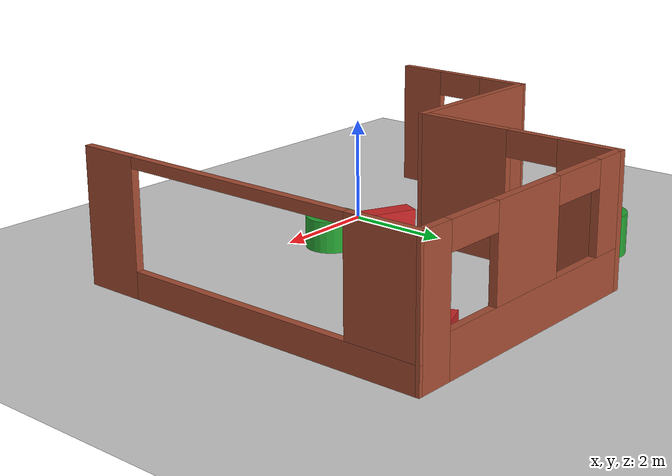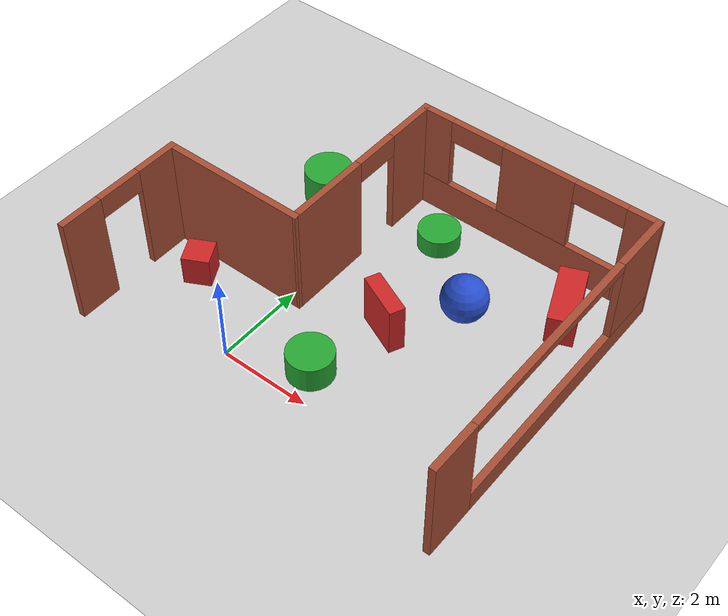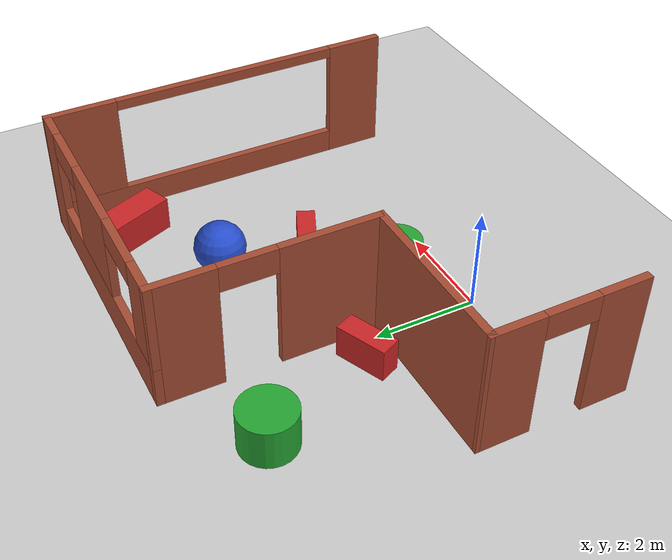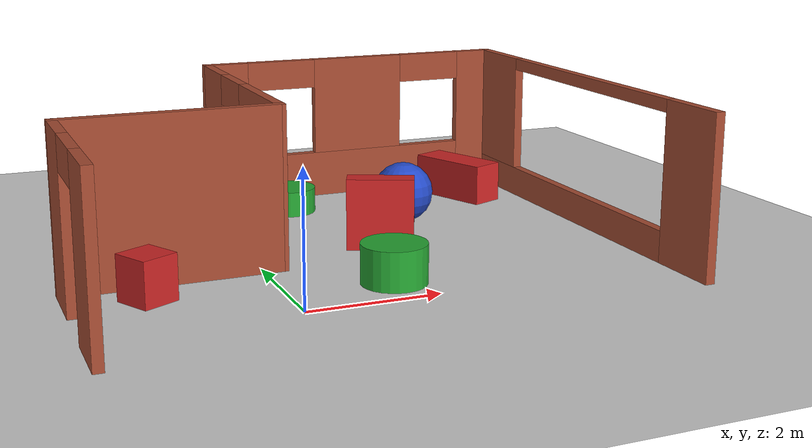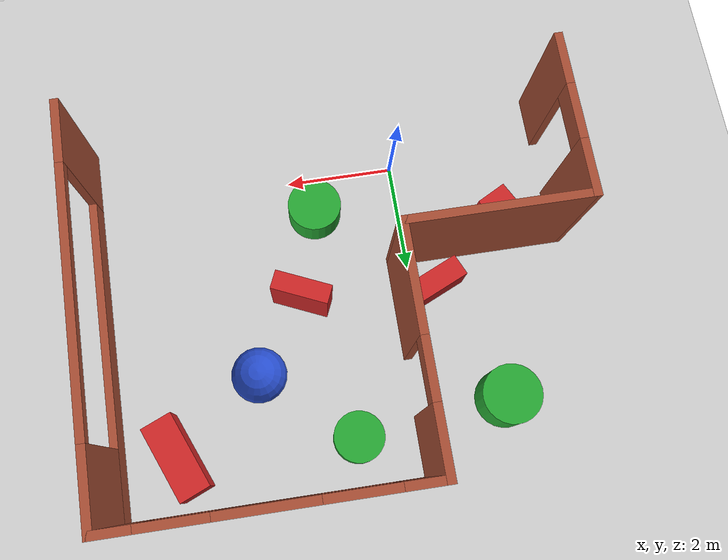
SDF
<sdf version="1.6">
 <world name="default">
  <model name="ground_plane">
   <static>1</static>
   <link name="link">
    <collision name="collision">
     <geometry><plane><normal>0 0 1</normal><size>100 100</size></plane></geometry>
     <surface>
      <contact><collide_bitmask>65535</collide_bitmask></contact>
      <friction><ode><mu>100</mu><mu2>50</mu2></ode></friction>
     </surface>
    </collision>
    <visual name="visual">
     <cast_shadows>0</cast_shadows>
     <geometry><plane><normal>0 0 1</normal><size>100 100</size></plane></geometry>
     <material>
      <script><uri>file://media/materials/scripts/gazebo.material</uri><name>Gazebo/Grey</name></script>
     </material>
    </visual>
   </link>
  </model>
  <model name="AssignmentBuilding_0">
   <link name="Wall_37">
    <pose>0.967555 4.32584 0 0 0 -1.5708</pose>
    <inertial>
     <mass>1</mass>
     <inertia><ixx>1</ixx><ixy>0</ixy><ixz>0</ixz><iyy>1</iyy><iyz>0</iyz><izz>1</izz></inertia>
    </inertial>
    <visual name="Wall_37_Visual_1">
     <pose>1.14152 0 1.25 0 -0 0</pose>
     <geometry><box><size>1.96696 0.15 2.5</size></box></geometry>
     <material>
      <script><uri>file://media/materials/scripts/gazebo.material</uri><name>Gazebo/Bricks</name></script>
      <ambient>1 1 1 1</ambient>
      <shader type="pixel"><normal_map>__default__</normal_map></shader>
      <diffuse>0.7 0.7 0.7 1</diffuse>
      <specular>0.01 0.01 0.01 1</specular>
      <emissive>0 0 0 1</emissive>
     </material>
     <meta><layer>0</layer></meta>
    </visual>
    <visual name="Wall_37_Visual_0">
     <pose>-1.50876 0 1.25 0 -0 0</pose>
     <geometry><box><size>1.23247 0.15 2.5</size></box></geometry>
     <material>
      <script><uri>file://media/materials/scripts/gazebo.material</uri><name>Gazebo/Bricks</name></script>
      <ambient>1 1 1 1</ambient>
      <shader type="pixel"><normal_map>__default__</normal_map></shader>
      <diffuse>0.7 0.7 0.7 1</diffuse>
      <specular>0.01 0.01 0.01 1</specular>
      <emissive>0 0 0 1</emissive>
     </material>
     <meta><layer>0</layer></meta>
    </visual>
    <visual name="Wall_37_Visual_2">
     <pose>-0.367245 0 2.25 0 -0 0</pose>
     <geometry><box><size>1.05057 0.15 0.5</size></box></geometry>
     <material>
      <script><uri>file://media/materials/scripts/gazebo.material</uri><name>Gazebo/Bricks</name></script>
      <ambient>1 1 1 1</ambient>
      <shader type="pixel"><normal_map>__default__</normal_map></shader>
      <diffuse>0.7 0.7 0.7 1</diffuse>
      <specular>0.01 0.01 0.01 1</specular>
      <emissive>0 0 0 1</emissive>
     </material>
     <meta><layer>0</layer></meta>
    </visual>
    <collision name="Wall_37_Collision_0">
     <pose>-1.50876 0 1.25 0 -0 0</pose>
     <geometry><box><size>1.23247 0.15 2.5</size></box></geometry>
     <surface>
      <friction>
       <ode><mu>1</mu><mu2>1</mu2><fdir1>0 0 0</fdir1><slip1>0</slip1><slip2>0</slip2></ode>
       <torsional>
        <coefficient>1</coefficient>
        <patch_radius>0</patch_radius>
        <surface_radius>0</surface_radius>
        <use_patch_radius>1</use_patch_radius>
        <ode><slip>0</slip></ode>
       </torsional>
      </friction>
      <bounce><restitution_coefficient>0</restitution_coefficient><threshold>1e+06</threshold></bounce>
      <contact>
       <collide_without_contact>0</collide_without_contact>
       <collide_without_contact_bitmask>1</collide_without_contact_bitmask>
       <collide_bitmask>1</collide_bitmask>
       <ode>
        <soft_cfm>0</soft_cfm>
        <soft_erp>0.2</soft_erp>
        <kp>1e+13</kp>
        <kd>1</kd>
        <max_vel>0.01</max_vel>
        <min_depth>0</min_depth>
       </ode>
       <bullet>
        <split_impulse>1</split_impulse>
        <split_impulse_penetration_threshold>-0.01</split_impulse_penetration_threshold>
        <soft_cfm>0</soft_cfm>
        <soft_erp>0.2</soft_erp>
        <kp>1e+13</kp>
        <kd>1</kd>
       </bullet>
      </contact>
     </surface>
    </collision>
    <collision name="Wall_37_Collision_1">
     <pose>1.14152 0 1.25 0 -0 0</pose>
     <geometry><box><size>1.96696 0.15 2.5</size></box></geometry>
     <surface>
      <friction>
       <ode><mu>1</mu><mu2>1</mu2><fdir1>0 0 0</fdir1><slip1>0</slip1><slip2>0</slip2></ode>
       <torsional>
        <coefficient>1</coefficient>
        <patch_radius>0</patch_radius>
        <surface_radius>0</surface_radius>
        <use_patch_radius>1</use_patch_radius>
        <ode><slip>0</slip></ode>
       </torsional>
      </friction>
      <bounce><restitution_coefficient>0</restitution_coefficient><threshold>1e+06</threshold></bounce>
      <contact>
       <collide_without_contact>0</collide_without_contact>
       <collide_without_contact_bitmask>1</collide_without_contact_bitmask>
       <collide_bitmask>1</collide_bitmask>
       <ode>
        <soft_cfm>0</soft_cfm>
        <soft_erp>0.2</soft_erp>
        <kp>1e+13</kp>
        <kd>1</kd>
        <max_vel>0.01</max_vel>
        <min_depth>0</min_depth>
       </ode>
       <bullet>
        <split_impulse>1</split_impulse>
        <split_impulse_penetration_threshold>-0.01</split_impulse_penetration_threshold>
        <soft_cfm>0</soft_cfm>
        <soft_erp>0.2</soft_erp>
        <kp>1e+13</kp>
        <kd>1</kd>
       </bullet>
      </contact>
     </surface>
    </collision>
    <collision name="Wall_37_Collision_2">
     <pose>-0.367245 0 2.25 0 -0 0</pose>
     <geometry><box><size>1.05057 0.15 0.5</size></box></geometry>
     <surface>
      <friction>
       <ode><mu>1</mu><mu2>1</mu2><fdir1>0 0 0</fdir1><slip1>0</slip1><slip2>0</slip2></ode>
       <torsional>
        <coefficient>1</coefficient>
        <patch_radius>0</patch_radius>
        <surface_radius>0</surface_radius>
        <use_patch_radius>1</use_patch_radius>
        <ode><slip>0</slip></ode>
       </torsional>
      </friction>
      <bounce><restitution_coefficient>0</restitution_coefficient><threshold>1e+06</threshold></bounce>
      <contact>
       <collide_without_contact>0</collide_without_contact>
       <collide_without_contact_bitmask>1</collide_without_contact_bitmask>
       <collide_bitmask>1</collide_bitmask>
       <ode>
        <soft_cfm>0</soft_cfm>
        <soft_erp>0.2</soft_erp>
        <kp>1e+13</kp>
        <kd>1</kd>
        <max_vel>0.01</max_vel>
        <min_depth>0</min_depth>
       </ode>
       <bullet>
        <split_impulse>1</split_impulse>
        <split_impulse_penetration_threshold>-0.01</split_impulse_penetration_threshold>
        <soft_cfm>0</soft_cfm>
        <soft_erp>0.2</soft_erp>
        <kp>1e+13</kp>
        <kd>1</kd>
       </bullet>
      </contact>
     </surface>
    </collision>
   </link>
   <link name="Wall_40">
    <pose>3.66768 6.37584 0 0 0 -3.14159</pose>
    <inertial>
     <mass>1</mass>
     <inertia><ixx>1</ixx><ixy>0</ixy><ixz>0</ixz><iyy>1</iyy><iyz>0</iyz><izz>1</izz></inertia>
    </inertial>
    <visual name="Wall_40_Visual_0">
     <pose>-2.41668 0 1.25 0 -0 0</pose>
     <geometry><box><size>0.71689 0.15 2.5</size></box></geometry>
     <material>
      <script><uri>file://media/materials/scripts/gazebo.material</uri><name>Gazebo/Bricks</name></script>
      <ambient>1 1 1 1</ambient>
      <shader type="pixel"><normal_map>__default__</normal_map></shader>
      <diffuse>1 1 1 1</diffuse>
      <specular>0.2 0.2 0.2 1</specular>
      <emissive>0 0 0 1</emissive>
     </material>
     <meta><layer>0</layer></meta>
    </visual>
    <visual name="Wall_40_Visual_1">
     <pose>0.358445 0 0.4 0 -0 0</pose>
     <geometry><box><size>4.83337 0.15 0.8</size></box></geometry>
     <material>
      <script><uri>file://media/materials/scripts/gazebo.material</uri><name>Gazebo/Bricks</name></script>
      <ambient>1 1 1 1</ambient>
      <shader type="pixel"><normal_map>__default__</normal_map></shader>
      <diffuse>0.7 0.7 0.7 1</diffuse>
      <specular>0.01 0.01 0.01 1</specular>
      <emissive>0 0 0 1</emissive>
     </material>
     <meta><layer>0</layer></meta>
    </visual>
    <visual name="Wall_40_Visual_2">
     <pose>-0.0658 0 1.65 0 -0 0</pose>
     <geometry><box><size>1.66352 0.15 1.7</size></box></geometry>
     <material>
      <script><uri>file://media/materials/scripts/gazebo.material</uri><name>Gazebo/Bricks</name></script>
      <ambient>1 1 1 1</ambient>
      <shader type="pixel"><normal_map>__default__</normal_map></shader>
      <diffuse>0.7 0.7 0.7 1</diffuse>
      <specular>0.01 0.01 0.01 1</specular>
      <emissive>0 0 0 1</emissive>
     </material>
     <meta><layer>0</layer></meta>
    </visual>
    <visual name="Wall_40_Visual_3">
     <pose>2.38491 0 1.65 0 -0 0</pose>
     <geometry><box><size>0.780436 0.15 1.7</size></box></geometry>
     <material>
      <script><uri>file://media/materials/scripts/gazebo.material</uri><name>Gazebo/Bricks</name></script>
      <ambient>1 1 1 1</ambient>
      <shader type="pixel"><normal_map>__default__</normal_map></shader>
      <diffuse>0.7 0.7 0.7 1</diffuse>
      <specular>0.01 0.01 0.01 1</specular>
      <emissive>0 0 0 1</emissive>
     </material>
     <meta><layer>0</layer></meta>
    </visual>
    <visual name="Wall_40_Visual_4">
     <pose>-1.4779 0 2.25 0 -0 0</pose>
     <geometry><box><size>1.16068 0.15 0.5</size></box></geometry>
     <material>
      <script><uri>file://media/materials/scripts/gazebo.material</uri><name>Gazebo/Bricks</name></script>
      <ambient>1 1 1 1</ambient>
      <shader type="pixel"><normal_map>__default__</normal_map></shader>
      <diffuse>0.7 0.7 0.7 1</diffuse>
      <specular>0.01 0.01 0.01 1</specular>
      <emissive>0 0 0 1</emissive>
     </material>
     <meta><layer>0</layer></meta>
    </visual>
    <visual name="Wall_40_Visual_5">
     <pose>1.38033 0 2.25 0 -0 0</pose>
     <geometry><box><size>1.22873 0.15 0.5</size></box></geometry>
     <material>
      <script><uri>file://media/materials/scripts/gazebo.material</uri><name>Gazebo/Bricks</name></script>
      <ambient>1 1 1 1</ambient>
      <shader type="pixel"><normal_map>__default__</normal_map></shader>
      <diffuse>0.7 0.7 0.7 1</diffuse>
      <specular>0.01 0.01 0.01 1</specular>
      <emissive>0 0 0 1</emissive>
     </material>
     <meta><layer>0</layer></meta>
    </visual>
    <collision name="Wall_40_Collision_0">
     <pose>-2.41668 0 1.25 0 -0 0</pose>
     <geometry><box><size>0.71689 0.15 2.5</size></box></geometry>
     <surface>
      <friction>
       <ode><mu>1</mu><mu2>1</mu2><fdir1>0 0 0</fdir1><slip1>0</slip1><slip2>0</slip2></ode>
       <torsional>
        <coefficient>1</coefficient>
        <patch_radius>0</patch_radius>
        <surface_radius>0</surface_radius>
        <use_patch_radius>1</use_patch_radius>
        <ode><slip>0</slip></ode>
       </torsional>
      </friction>
      <bounce><restitution_coefficient>0</restitution_coefficient><threshold>1e+06</threshold></bounce>
      <contact>
       <collide_without_contact>0</collide_without_contact>
       <collide_without_contact_bitmask>1</collide_without_contact_bitmask>
       <collide_bitmask>1</collide_bitmask>
       <ode>
        <soft_cfm>0</soft_cfm>
        <soft_erp>0.2</soft_erp>
        <kp>1e+13</kp>
        <kd>1</kd>
        <max_vel>0.01</max_vel>
        <min_depth>0</min_depth>
       </ode>
       <bullet>
        <split_impulse>1</split_impulse>
        <split_impulse_penetration_threshold>-0.01</split_impulse_penetration_threshold>
        <soft_cfm>0</soft_cfm>
        <soft_erp>0.2</soft_erp>
        <kp>1e+13</kp>
        <kd>1</kd>
       </bullet>
      </contact>
     </surface>
    </collision>
    <collision name="Wall_40_Collision_1">
     <pose>0.358445 0 0.4 0 -0 0</pose>
     <geometry><box><size>4.83337 0.15 0.8</size></box></geometry>
     <surface>
      <friction>
       <ode><mu>1</mu><mu2>1</mu2><fdir1>0 0 0</fdir1><slip1>0</slip1><slip2>0</slip2></ode>
       <torsional>
        <coefficient>1</coefficient>
        <patch_radius>0</patch_radius>
        <surface_radius>0</surface_radius>
        <use_patch_radius>1</use_patch_radius>
        <ode><slip>0</slip></ode>
       </torsional>
      </friction>
      <bounce><restitution_coefficient>0</restitution_coefficient><threshold>1e+06</threshold></bounce>
      <contact>
       <collide_without_contact>0</collide_without_contact>
       <collide_without_contact_bitmask>1</collide_without_contact_bitmask>
       <collide_bitmask>1</collide_bitmask>
       <ode>
        <soft_cfm>0</soft_cfm>
        <soft_erp>0.2</soft_erp>
        <kp>1e+13</kp>
        <kd>1</kd>
        <max_vel>0.01</max_vel>
        <min_depth>0</min_depth>
       </ode>
       <bullet>
        <split_impulse>1</split_impulse>
        <split_impulse_penetration_threshold>-0.01</split_impulse_penetration_threshold>
        <soft_cfm>0</soft_cfm>
        <soft_erp>0.2</soft_erp>
        <kp>1e+13</kp>
        <kd>1</kd>
       </bullet>
      </contact>
     </surface>
    </collision>
    <collision name="Wall_40_Collision_2">
     <pose>-0.0658 0 1.65 0 -0 0</pose>
     <geometry><box><size>1.66352 0.15 1.7</size></box></geometry>
     <surface>
      <friction>
       <ode><mu>1</mu><mu2>1</mu2><fdir1>0 0 0</fdir1><slip1>0</slip1><slip2>0</slip2></ode>
       <torsional>
        <coefficient>1</coefficient>
        <patch_radius>0</patch_radius>
        <surface_radius>0</surface_radius>
        <use_patch_radius>1</use_patch_radius>
        <ode><slip>0</slip></ode>
       </torsional>
      </friction>
      <bounce><restitution_coefficient>0</restitution_coefficient><threshold>1e+06</threshold></bounce>
      <contact>
       <collide_without_contact>0</collide_without_contact>
       <collide_without_contact_bitmask>1</collide_without_contact_bitmask>
       <collide_bitmask>1</collide_bitmask>
       <ode>
        <soft_cfm>0</soft_cfm>
        <soft_erp>0.2</soft_erp>
        <kp>1e+13</kp>
        <kd>1</kd>
        <max_vel>0.01</max_vel>
        <min_depth>0</min_depth>
       </ode>
       <bullet>
        <split_impulse>1</split_impulse>
        <split_impulse_penetration_threshold>-0.01</split_impulse_penetration_threshold>
        <soft_cfm>0</soft_cfm>
        <soft_erp>0.2</soft_erp>
        <kp>1e+13</kp>
        <kd>1</kd>
       </bullet>
      </contact>
     </surface>
    </collision>
    <collision name="Wall_40_Collision_3">
     <pose>2.38491 0 1.65 0 -0 0</pose>
     <geometry><box><size>0.780436 0.15 1.7</size></box></geometry>
     <surface>
      <friction>
       <ode><mu>1</mu><mu2>1</mu2><fdir1>0 0 0</fdir1><slip1>0</slip1><slip2>0</slip2></ode>
       <torsional>
        <coefficient>1</coefficient>
        <patch_radius>0</patch_radius>
        <surface_radius>0</surface_radius>
        <use_patch_radius>1</use_patch_radius>
        <ode><slip>0</slip></ode>
       </torsional>
      </friction>
      <bounce><restitution_coefficient>0</restitution_coefficient><threshold>1e+06</threshold></bounce>
      <contact>
       <collide_without_contact>0</collide_without_contact>
       <collide_without_contact_bitmask>1</collide_without_contact_bitmask>
       <collide_bitmask>1</collide_bitmask>
       <ode>
        <soft_cfm>0</soft_cfm>
        <soft_erp>0.2</soft_erp>
        <kp>1e+13</kp>
        <kd>1</kd>
        <max_vel>0.01</max_vel>
        <min_depth>0</min_depth>
       </ode>
       <bullet>
        <split_impulse>1</split_impulse>
        <split_impulse_penetration_threshold>-0.01</split_impulse_penetration_threshold>
        <soft_cfm>0</soft_cfm>
        <soft_erp>0.2</soft_erp>
        <kp>1e+13</kp>
        <kd>1</kd>
       </bullet>
      </contact>
     </surface>
    </collision>
    <collision name="Wall_40_Collision_4">
     <pose>-1.4779 0 2.25 0 -0 0</pose>
     <geometry><box><size>1.16068 0.15 0.5</size></box></geometry>
     <surface>
      <friction>
       <ode><mu>1</mu><mu2>1</mu2><fdir1>0 0 0</fdir1><slip1>0</slip1><slip2>0</slip2></ode>
       <torsional>
        <coefficient>1</coefficient>
        <patch_radius>0</patch_radius>
        <surface_radius>0</surface_radius>
        <use_patch_radius>1</use_patch_radius>
        <ode><slip>0</slip></ode>
       </torsional>
      </friction>
      <bounce><restitution_coefficient>0</restitution_coefficient><threshold>1e+06</threshold></bounce>
      <contact>
       <collide_without_contact>0</collide_without_contact>
       <collide_without_contact_bitmask>1</collide_without_contact_bitmask>
       <collide_bitmask>1</collide_bitmask>
       <ode>
        <soft_cfm>0</soft_cfm>
        <soft_erp>0.2</soft_erp>
        <kp>1e+13</kp>
        <kd>1</kd>
        <max_vel>0.01</max_vel>
        <min_depth>0</min_depth>
       </ode>
       <bullet>
        <split_impulse>1</split_impulse>
        <split_impulse_penetration_threshold>-0.01</split_impulse_penetration_threshold>
        <soft_cfm>0</soft_cfm>
        <soft_erp>0.2</soft_erp>
        <kp>1e+13</kp>
        <kd>1</kd>
       </bullet>
      </contact>
     </surface>
    </collision>
    <collision name="Wall_40_Collision_5">
     <pose>1.38033 0 2.25 0 -0 0</pose>
     <geometry><box><size>1.22873 0.15 0.5</size></box></geometry>
     <surface>
      <friction>
       <ode><mu>1</mu><mu2>1</mu2><fdir1>0 0 0</fdir1><slip1>0</slip1><slip2>0</slip2></ode>
       <torsional>
        <coefficient>1</coefficient>
        <patch_radius>0</patch_radius>
        <surface_radius>0</surface_radius>
        <use_patch_radius>1</use_patch_radius>
        <ode><slip>0</slip></ode>
       </torsional>
      </friction>
      <bounce><restitution_coefficient>0</restitution_coefficient><threshold>1e+06</threshold></bounce>
      <contact>
       <collide_without_contact>0</collide_without_contact>
       <collide_without_contact_bitmask>1</collide_without_contact_bitmask>
       <collide_bitmask>1</collide_bitmask>
       <ode>
        <soft_cfm>0</soft_cfm>
        <soft_erp>0.2</soft_erp>
        <kp>1e+13</kp>
        <kd>1</kd>
        <max_vel>0.01</max_vel>
        <min_depth>0</min_depth>
       </ode>
       <bullet>
        <split_impulse>1</split_impulse>
        <split_impulse_penetration_threshold>-0.01</split_impulse_penetration_threshold>
        <soft_cfm>0</soft_cfm>
        <soft_erp>0.2</soft_erp>
        <kp>1e+13</kp>
        <kd>1</kd>
       </bullet>
      </contact>
     </surface>
    </collision>
   </link>
   <link name="Wall_42">
    <pose>-0.631247 2.27475 0 0 -0 0.000678</pose>
    <inertial>
     <mass>1</mass>
     <inertia><ixx>1</ixx><ixy>0</ixy><ixz>0</ixz><iyy>1</iyy><iyz>0</iyz><izz>1</izz></inertia>
    </inertial>
    <visual name="Wall_42_Visual">
     <pose>0 0 1.25 0 -0 0</pose>
     <geometry><box><size>3.34761 0.15 2.5</size></box></geometry>
     <material>
      <script><uri>file://media/materials/scripts/gazebo.material</uri><name>Gazebo/Bricks</name></script>
      <ambient>1 1 1 1</ambient>
      <shader type="pixel"><normal_map>__default__</normal_map></shader>
      <diffuse>1 1 1 1</diffuse>
      <specular>0.2 0.2 0.2 1</specular>
      <emissive>0 0 0 1</emissive>
     </material>
     <meta><layer>0</layer></meta>
    </visual>
    <collision name="Wall_42_Collision">
     <pose>0 0 1.25 0 -0 0</pose>
     <geometry><box><size>3.34761 0.15 2.5</size></box></geometry>
     <surface>
      <friction>
       <ode><mu>1</mu><mu2>1</mu2><fdir1>0 0 0</fdir1><slip1>0</slip1><slip2>0</slip2></ode>
       <torsional>
        <coefficient>1</coefficient>
        <patch_radius>0</patch_radius>
        <surface_radius>0</surface_radius>
        <use_patch_radius>1</use_patch_radius>
        <ode><slip>0</slip></ode>
       </torsional>
      </friction>
      <bounce><restitution_coefficient>0</restitution_coefficient><threshold>1e+06</threshold></bounce>
      <contact>
       <collide_without_contact>0</collide_without_contact>
       <collide_without_contact_bitmask>1</collide_without_contact_bitmask>
       <collide_bitmask>1</collide_bitmask>
       <ode>
        <soft_cfm>0</soft_cfm>
        <soft_erp>0.2</soft_erp>
        <kp>1e+13</kp>
        <kd>1</kd>
        <max_vel>0.01</max_vel>
        <min_depth>0</min_depth>
       </ode>
       <bullet>
        <split_impulse>1</split_impulse>
        <split_impulse_penetration_threshold>-0.01</split_impulse_penetration_threshold>
        <soft_cfm>0</soft_cfm>
        <soft_erp>0.2</soft_erp>
        <kp>1e+13</kp>
        <kd>1</kd>
       </bullet>
      </contact>
     </surface>
    </collision>
   </link>
   <link name="Wall_46">
    <pose>6.37502 2.87945 0 0 -0 1.57286</pose>
    <inertial>
     <mass>1</mass>
     <inertia><ixx>1</ixx><ixy>0</ixy><ixz>0</ixz><iyy>1</iyy><iyz>0</iyz><izz>1</izz></inertia>
    </inertial>
    <visual name="Wall_46_Visual_0">
     <pose>-2.99489 0 1.25 0 -0 0</pose>
     <geometry><box><size>1.15301 0.15 2.5</size></box></geometry>
     <material>
      <script><uri>file://media/materials/scripts/gazebo.material</uri><name>Gazebo/Bricks</name></script>
      <ambient>1 1 1 1</ambient>
      <shader type="pixel"><normal_map>__default__</normal_map></shader>
      <diffuse>1 1 1 1</diffuse>
      <specular>0.2 0.2 0.2 1</specular>
      <emissive>0 0 0 1</emissive>
     </material>
     <meta><layer>0</layer></meta>
    </visual>
    <visual name="Wall_46_Visual_1">
     <pose>0.576503 0 0.2495 0 -0 0</pose>
     <geometry><box><size>5.98978 0.15 0.499</size></box></geometry>
     <material>
      <script><uri>file://media/materials/scripts/gazebo.material</uri><name>Gazebo/Bricks</name></script>
      <ambient>1 1 1 1</ambient>
      <shader type="pixel"><normal_map>__default__</normal_map></shader>
      <diffuse>0.7 0.7 0.7 1</diffuse>
      <specular>0.01 0.01 0.01 1</specular>
      <emissive>0 0 0 1</emissive>
     </material>
     <meta><layer>0</layer></meta>
    </visual>
    <visual name="Wall_46_Visual_2">
     <pose>2.865 0 1.4995 0 -0 0</pose>
     <geometry><box><size>1.41278 0.15 2.001</size></box></geometry>
     <material>
      <script><uri>file://media/materials/scripts/gazebo.material</uri><name>Gazebo/Bricks</name></script>
      <ambient>1 1 1 1</ambient>
      <shader type="pixel"><normal_map>__default__</normal_map></shader>
      <diffuse>0.7 0.7 0.7 1</diffuse>
      <specular>0.01 0.01 0.01 1</specular>
      <emissive>0 0 0 1</emissive>
     </material>
     <meta><layer>0</layer></meta>
    </visual>
    <visual name="Wall_46_Visual_3">
     <pose>-0.129889 0 2.3995 0 -0 0</pose>
     <geometry><box><size>4.577 0.15 0.201</size></box></geometry>
     <material>
      <script><uri>file://media/materials/scripts/gazebo.material</uri><name>Gazebo/Bricks</name></script>
      <ambient>1 1 1 1</ambient>
      <shader type="pixel"><normal_map>__default__</normal_map></shader>
      <diffuse>0.7 0.7 0.7 1</diffuse>
      <specular>0.01 0.01 0.01 1</specular>
      <emissive>0 0 0 1</emissive>
     </material>
     <meta><layer>0</layer></meta>
    </visual>
    <collision name="Wall_46_Collision_0">
     <pose>-2.99489 0 1.25 0 -0 0</pose>
     <geometry><box><size>1.15301 0.15 2.5</size></box></geometry>
     <surface>
      <friction>
       <ode><mu>1</mu><mu2>1</mu2><fdir1>0 0 0</fdir1><slip1>0</slip1><slip2>0</slip2></ode>
       <torsional>
        <coefficient>1</coefficient>
        <patch_radius>0</patch_radius>
        <surface_radius>0</surface_radius>
        <use_patch_radius>1</use_patch_radius>
        <ode><slip>0</slip></ode>
       </torsional>
      </friction>
      <bounce><restitution_coefficient>0</restitution_coefficient><threshold>1e+06</threshold></bounce>
      <contact>
       <collide_without_contact>0</collide_without_contact>
       <collide_without_contact_bitmask>1</collide_without_contact_bitmask>
       <collide_bitmask>1</collide_bitmask>
       <ode>
        <soft_cfm>0</soft_cfm>
        <soft_erp>0.2</soft_erp>
        <kp>1e+13</kp>
        <kd>1</kd>
        <max_vel>0.01</max_vel>
        <min_depth>0</min_depth>
       </ode>
       <bullet>
        <split_impulse>1</split_impulse>
        <split_impulse_penetration_threshold>-0.01</split_impulse_penetration_threshold>
        <soft_cfm>0</soft_cfm>
        <soft_erp>0.2</soft_erp>
        <kp>1e+13</kp>
        <kd>1</kd>
       </bullet>
      </contact>
     </surface>
    </collision>
    <collision name="Wall_46_Collision_1">
     <pose>0.576503 0 0.2495 0 -0 0</pose>
     <geometry><box><size>5.98978 0.15 0.499</size></box></geometry>
     <surface>
      <friction>
       <ode><mu>1</mu><mu2>1</mu2><fdir1>0 0 0</fdir1><slip1>0</slip1><slip2>0</slip2></ode>
       <torsional>
        <coefficient>1</coefficient>
        <patch_radius>0</patch_radius>
        <surface_radius>0</surface_radius>
        <use_patch_radius>1</use_patch_radius>
        <ode><slip>0</slip></ode>
       </torsional>
      </friction>
      <bounce><restitution_coefficient>0</restitution_coefficient><threshold>1e+06</threshold></bounce>
      <contact>
       <collide_without_contact>0</collide_without_contact>
       <collide_without_contact_bitmask>1</collide_without_contact_bitmask>
       <collide_bitmask>1</collide_bitmask>
       <ode>
        <soft_cfm>0</soft_cfm>
        <soft_erp>0.2</soft_erp>
        <kp>1e+13</kp>
        <kd>1</kd>
        <max_vel>0.01</max_vel>
        <min_depth>0</min_depth>
       </ode>
       <bullet>
        <split_impulse>1</split_impulse>
        <split_impulse_penetration_threshold>-0.01</split_impulse_penetration_threshold>
        <soft_cfm>0</soft_cfm>
        <soft_erp>0.2</soft_erp>
        <kp>1e+13</kp>
        <kd>1</kd>
       </bullet>
      </contact>
     </surface>
    </collision>
    <collision name="Wall_46_Collision_2">
     <pose>2.865 0 1.4995 0 -0 0</pose>
     <geometry><box><size>1.41278 0.15 2.001</size></box></geometry>
     <surface>
      <friction>
       <ode><mu>1</mu><mu2>1</mu2><fdir1>0 0 0</fdir1><slip1>0</slip1><slip2>0</slip2></ode>
       <torsional>
        <coefficient>1</coefficient>
        <patch_radius>0</patch_radius>
        <surface_radius>0</surface_radius>
        <use_patch_radius>1</use_patch_radius>
        <ode><slip>0</slip></ode>
       </torsional>
      </friction>
      <bounce><restitution_coefficient>0</restitution_coefficient><threshold>1e+06</threshold></bounce>
      <contact>
       <collide_without_contact>0</collide_without_contact>
       <collide_without_contact_bitmask>1</collide_without_contact_bitmask>
       <collide_bitmask>1</collide_bitmask>
       <ode>
        <soft_cfm>0</soft_cfm>
        <soft_erp>0.2</soft_erp>
        <kp>1e+13</kp>
        <kd>1</kd>
        <max_vel>0.01</max_vel>
        <min_depth>0</min_depth>
       </ode>
       <bullet>
        <split_impulse>1</split_impulse>
        <split_impulse_penetration_threshold>-0.01</split_impulse_penetration_threshold>
        <soft_cfm>0</soft_cfm>
        <soft_erp>0.2</soft_erp>
        <kp>1e+13</kp>
        <kd>1</kd>
       </bullet>
      </contact>
     </surface>
    </collision>
    <collision name="Wall_46_Collision_3">
     <pose>-0.129889 0 2.3995 0 -0 0</pose>
     <geometry><box><size>4.577 0.15 0.201</size></box></geometry>
     <surface>
      <friction>
       <ode><mu>1</mu><mu2>1</mu2><fdir1>0 0 0</fdir1><slip1>0</slip1><slip2>0</slip2></ode>
       <torsional>
        <coefficient>1</coefficient>
        <patch_radius>0</patch_radius>
        <surface_radius>0</surface_radius>
        <use_patch_radius>1</use_patch_radius>
        <ode><slip>0</slip></ode>
       </torsional>
      </friction>
      <bounce><restitution_coefficient>0</restitution_coefficient><threshold>1e+06</threshold></bounce>
      <contact>
       <collide_without_contact>0</collide_without_contact>
       <collide_without_contact_bitmask>1</collide_without_contact_bitmask>
       <collide_bitmask>1</collide_bitmask>
       <ode>
        <soft_cfm>0</soft_cfm>
        <soft_erp>0.2</soft_erp>
        <kp>1e+13</kp>
        <kd>1</kd>
        <max_vel>0.01</max_vel>
        <min_depth>0</min_depth>
       </ode>
       <bullet>
        <split_impulse>1</split_impulse>
        <split_impulse_penetration_threshold>-0.01</split_impulse_penetration_threshold>
        <soft_cfm>0</soft_cfm>
        <soft_erp>0.2</soft_erp>
        <kp>1e+13</kp>
        <kd>1</kd>
       </bullet>
      </contact>
     </surface>
    </collision>
   </link>
   <link name="Wall_60">
    <pose>-2.23005 0.848671 0 0 0 -1.5708</pose>
    <inertial>
     <mass>1</mass>
     <inertia><ixx>1</ixx><ixy>0</ixy><ixz>0</ixz><iyy>1</iyy><iyz>0</iyz><izz>1</izz></inertia>
    </inertial>
    <visual name="Wall_60_Visual_0">
     <pose>-0.983723 0 1.25 0 -0 0</pose>
     <geometry><box><size>1.03255 0.15 2.5</size></box></geometry>
     <material>
      <script><uri>file://media/materials/scripts/gazebo.material</uri><name>Gazebo/Bricks</name></script>
      <ambient>1 1 1 1</ambient>
      <shader type="pixel"><normal_map>__default__</normal_map></shader>
      <diffuse>1 1 1 1</diffuse>
      <specular>0.2 0.2 0.2 1</specular>
      <emissive>0 0 0 1</emissive>
     </material>
     <meta><layer>0</layer></meta>
    </visual>
    <visual name="Wall_60_Visual_1">
     <pose>1.02103 0 1.25 0 -0 0</pose>
     <geometry><box><size>0.957943 0.15 2.5</size></box></geometry>
     <material>
      <script><uri>file://media/materials/scripts/gazebo.material</uri><name>Gazebo/Bricks</name></script>
      <ambient>1 1 1 1</ambient>
      <shader type="pixel"><normal_map>__default__</normal_map></shader>
      <diffuse>0.7 0.7 0.7 1</diffuse>
      <specular>0.01 0.01 0.01 1</specular>
      <emissive>0 0 0 1</emissive>
     </material>
     <meta><layer>0</layer></meta>
    </visual>
    <visual name="Wall_60_Visual_2">
     <pose>0.037305 0 2.25 0 -0 0</pose>
     <geometry><box><size>1.0095 0.15 0.5</size></box></geometry>
     <material>
      <script><uri>file://media/materials/scripts/gazebo.material</uri><name>Gazebo/Bricks</name></script>
      <ambient>1 1 1 1</ambient>
      <shader type="pixel"><normal_map>__default__</normal_map></shader>
      <diffuse>0.7 0.7 0.7 1</diffuse>
      <specular>0.01 0.01 0.01 1</specular>
      <emissive>0 0 0 1</emissive>
     </material>
     <meta><layer>0</layer></meta>
    </visual>
    <collision name="Wall_60_Collision_0">
     <pose>-0.983723 0 1.25 0 -0 0</pose>
     <geometry><box><size>1.03255 0.15 2.5</size></box></geometry>
     <surface>
      <friction>
       <ode><mu>1</mu><mu2>1</mu2><fdir1>0 0 0</fdir1><slip1>0</slip1><slip2>0</slip2></ode>
       <torsional>
        <coefficient>1</coefficient>
        <patch_radius>0</patch_radius>
        <surface_radius>0</surface_radius>
        <use_patch_radius>1</use_patch_radius>
        <ode><slip>0</slip></ode>
       </torsional>
      </friction>
      <bounce><restitution_coefficient>0</restitution_coefficient><threshold>1e+06</threshold></bounce>
      <contact>
       <collide_without_contact>0</collide_without_contact>
       <collide_without_contact_bitmask>1</collide_without_contact_bitmask>
       <collide_bitmask>1</collide_bitmask>
       <ode>
        <soft_cfm>0</soft_cfm>
        <soft_erp>0.2</soft_erp>
        <kp>1e+13</kp>
        <kd>1</kd>
        <max_vel>0.01</max_vel>
        <min_depth>0</min_depth>
       </ode>
       <bullet>
        <split_impulse>1</split_impulse>
        <split_impulse_penetration_threshold>-0.01</split_impulse_penetration_threshold>
        <soft_cfm>0</soft_cfm>
        <soft_erp>0.2</soft_erp>
        <kp>1e+13</kp>
        <kd>1</kd>
       </bullet>
      </contact>
     </surface>
    </collision>
    <collision name="Wall_60_Collision_1">
     <pose>1.02103 0 1.25 0 -0 0</pose>
     <geometry><box><size>0.957943 0.15 2.5</size></box></geometry>
     <surface>
      <friction>
       <ode><mu>1</mu><mu2>1</mu2><fdir1>0 0 0</fdir1><slip1>0</slip1><slip2>0</slip2></ode>
       <torsional>
        <coefficient>1</coefficient>
        <patch_radius>0</patch_radius>
        <surface_radius>0</surface_radius>
        <use_patch_radius>1</use_patch_radius>
        <ode><slip>0</slip></ode>
       </torsional>
      </friction>
      <bounce><restitution_coefficient>0</restitution_coefficient><threshold>1e+06</threshold></bounce>
      <contact>
       <collide_without_contact>0</collide_without_contact>
       <collide_without_contact_bitmask>1</collide_without_contact_bitmask>
       <collide_bitmask>1</collide_bitmask>
       <ode>
        <soft_cfm>0</soft_cfm>
        <soft_erp>0.2</soft_erp>
        <kp>1e+13</kp>
        <kd>1</kd>
        <max_vel>0.01</max_vel>
        <min_depth>0</min_depth>
       </ode>
       <bullet>
        <split_impulse>1</split_impulse>
        <split_impulse_penetration_threshold>-0.01</split_impulse_penetration_threshold>
        <soft_cfm>0</soft_cfm>
        <soft_erp>0.2</soft_erp>
        <kp>1e+13</kp>
        <kd>1</kd>
       </bullet>
      </contact>
     </surface>
    </collision>
    <collision name="Wall_60_Collision_2">
     <pose>0.037305 0 2.25 0 -0 0</pose>
     <geometry><box><size>1.0095 0.15 0.5</size></box></geometry>
     <surface>
      <friction>
       <ode><mu>1</mu><mu2>1</mu2><fdir1>0 0 0</fdir1><slip1>0</slip1><slip2>0</slip2></ode>
       <torsional>
        <coefficient>1</coefficient>
        <patch_radius>0</patch_radius>
        <surface_radius>0</surface_radius>
        <use_patch_radius>1</use_patch_radius>
        <ode><slip>0</slip></ode>
       </torsional>
      </friction>
      <bounce><restitution_coefficient>0</restitution_coefficient><threshold>1e+06</threshold></bounce>
      <contact>
       <collide_without_contact>0</collide_without_contact>
       <collide_without_contact_bitmask>1</collide_without_contact_bitmask>
       <collide_bitmask>1</collide_bitmask>
       <ode>
        <soft_cfm>0</soft_cfm>
        <soft_erp>0.2</soft_erp>
        <kp>1e+13</kp>
        <kd>1</kd>
        <max_vel>0.01</max_vel>
        <min_depth>0</min_depth>
       </ode>
       <bullet>
        <split_impulse>1</split_impulse>
        <split_impulse_penetration_threshold>-0.01</split_impulse_penetration_threshold>
        <soft_cfm>0</soft_cfm>
        <soft_erp>0.2</soft_erp>
        <kp>1e+13</kp>
        <kd>1</kd>
       </bullet>
      </contact>
     </surface>
    </collision>
   </link>
   <static>1</static>
   <pose>-0.68157 -0.42903 0 0 -0 0</pose>
  </model>
  <model name="unit_box_3_clone">
   <link name="link">
    <inertial>
     <mass>1</mass>
     <inertia>
      <ixx>0.166667</ixx>
      <ixy>0</ixy>
      <ixz>0</ixz>
      <iyy>0.166667</iyy>
      <iyz>0</iyz>
      <izz>0.166667</izz>
     </inertia>
    </inertial>
    <visual name="visual">
     <geometry><box><size>1.44683 0.587718 0.68729</size></box></geometry>
     <material>
      <script><name>Gazebo/Red</name><uri>file://media/materials/scripts/gazebo.material</uri></script>
      <shader type="pixel"><normal_map>__default__</normal_map></shader>
      <ambient>1 0 0 1</ambient>
      <diffuse>1 0 0 1</diffuse>
      <specular>0.1 0.1 0.1 1</specular>
      <emissive>0 0 0 1</emissive>
     </material>
    </visual>
    <collision name="collision">
     <geometry><box><size>1.44683 0.587718 0.68729</size></box></geometry>
     <surface>
      <friction>
       <ode><mu>1</mu><mu2>1</mu2><fdir1>0 0 0</fdir1><slip1>0</slip1><slip2>0</slip2></ode>
       <torsional>
        <coefficient>1</coefficient>
        <patch_radius>0</patch_radius>
        <surface_radius>0</surface_radius>
        <use_patch_radius>1</use_patch_radius>
        <ode><slip>0</slip></ode>
       </torsional>
      </friction>
      <bounce><restitution_coefficient>0</restitution_coefficient><threshold>1e+06</threshold></bounce>
      <contact>
       <collide_without_contact>0</collide_without_contact>
       <collide_without_contact_bitmask>1</collide_without_contact_bitmask>
       <collide_bitmask>1</collide_bitmask>
       <ode>
        <soft_cfm>0</soft_cfm>
        <soft_erp>0.2</soft_erp>
        <kp>1e+13</kp>
        <kd>1</kd>
        <max_vel>0.01</max_vel>
        <min_depth>0</min_depth>
       </ode>
       <bullet>
        <split_impulse>1</split_impulse>
        <split_impulse_penetration_threshold>-0.01</split_impulse_penetration_threshold>
        <soft_cfm>0</soft_cfm>
        <soft_erp>0.2</soft_erp>
        <kp>1e+13</kp>
        <kd>1</kd>
       </bullet>
      </contact>
     </surface>
    </collision>
   </link>
   <static>0</static>
   <pose>4.62197 4.90578 0.343645 0 0 -1.1788</pose>
  </model>
  <model name="unit_box_3_clone_1">
   <link name="link">
    <inertial>
     <mass>1</mass>
     <inertia>
      <ixx>0.166667</ixx>
      <ixy>0</ixy>
      <ixz>0</ixz>
      <iyy>0.166667</iyy>
      <iyz>0</iyz>
      <izz>0.166667</izz>
     </inertia>
    </inertial>
    <visual name="visual">
     <geometry><box><size>1.04886 0.344574 1.13518</size></box></geometry>
     <material>
      <script><name>Gazebo/Red</name><uri>file://media/materials/scripts/gazebo.material</uri></script>
      <shader type="pixel"><normal_map>__default__</normal_map></shader>
      <ambient>1 0 0 1</ambient>
      <diffuse>1 0 0 1</diffuse>
      <specular>0.1 0.1 0.1 1</specular>
      <emissive>0 0 0 1</emissive>
     </material>
    </visual>
    <collision name="collision">
     <geometry><box><size>1.04886 0.344574 1.13518</size></box></geometry>
     <surface>
      <friction>
       <ode><mu>1</mu><mu2>1</mu2><fdir1>0 0 0</fdir1><slip1>0</slip1><slip2>0</slip2></ode>
       <torsional>
        <coefficient>1</coefficient>
        <patch_radius>0</patch_radius>
        <surface_radius>0</surface_radius>
        <use_patch_radius>1</use_patch_radius>
        <ode><slip>0</slip></ode>
       </torsional>
      </friction>
      <bounce><restitution_coefficient>0</restitution_coefficient><threshold>1e+06</threshold></bounce>
      <contact>
       <collide_without_contact>0</collide_without_contact>
       <collide_without_contact_bitmask>1</collide_without_contact_bitmask>
       <collide_bitmask>1</collide_bitmask>
       <ode>
        <soft_cfm>0</soft_cfm>
        <soft_erp>0.2</soft_erp>
        <kp>1e+13</kp>
        <kd>1</kd>
        <max_vel>0.01</max_vel>
        <min_depth>0</min_depth>
       </ode>
       <bullet>
        <split_impulse>1</split_impulse>
        <split_impulse_penetration_threshold>-0.01</split_impulse_penetration_threshold>
        <soft_cfm>0</soft_cfm>
        <soft_erp>0.2</soft_erp>
        <kp>1e+13</kp>
        <kd>1</kd>
       </bullet>
      </contact>
     </surface>
    </collision>
   </link>
   <static>0</static>
   <pose>2.05399 2.35317 0.567586 1e-06 -8e-06 -0.42039</pose>
  </model>
  <model name="unit_box_3_clone_3">
   <link name="link">
    <inertial>
     <mass>1</mass>
     <inertia>
      <ixx>0.166667</ixx>
      <ixy>0</ixy>
      <ixz>0</ixz>
      <iyy>0.166667</iyy>
      <iyz>0</iyz>
      <izz>0.166667</izz>
     </inertia>
    </inertial>
    <visual name="visual">
     <geometry><box><size>0.597837 0.587718 0.68729</size></box></geometry>
     <material>
      <script><name>Gazebo/Red</name><uri>file://media/materials/scripts/gazebo.material</uri></script>
      <shader type="pixel"><normal_map>__default__</normal_map></shader>
      <ambient>1 0 0 1</ambient>
      <diffuse>1 0 0 1</diffuse>
      <specular>0.1 0.1 0.1 1</specular>
      <emissive>0 0 0 1</emissive>
     </material>
    </visual>
    <collision name="collision">
     <geometry><box><size>0.597837 0.587718 0.68729</size></box></geometry>
     <surface>
      <friction>
       <ode><mu>1</mu><mu2>1</mu2><fdir1>0 0 0</fdir1><slip1>0</slip1><slip2>0</slip2></ode>
       <torsional>
        <coefficient>1</coefficient>
        <patch_radius>0</patch_radius>
        <surface_radius>0</surface_radius>
        <use_patch_radius>1</use_patch_radius>
        <ode><slip>0</slip></ode>
       </torsional>
      </friction>
      <bounce><restitution_coefficient>0</restitution_coefficient><threshold>1e+06</threshold></bounce>
      <contact>
       <collide_without_contact>0</collide_without_contact>
       <collide_without_contact_bitmask>1</collide_without_contact_bitmask>
       <collide_bitmask>1</collide_bitmask>
       <ode>
        <soft_cfm>0</soft_cfm>
        <soft_erp>0.2</soft_erp>
        <kp>1e+13</kp>
        <kd>1</kd>
        <max_vel>0.01</max_vel>
        <min_depth>0</min_depth>
       </ode>
       <bullet>
        <split_impulse>1</split_impulse>
        <split_impulse_penetration_threshold>-0.01</split_impulse_penetration_threshold>
        <soft_cfm>0</soft_cfm>
        <soft_erp>0.2</soft_erp>
        <kp>1e+13</kp>
        <kd>1</kd>
       </bullet>
      </contact>
     </surface>
    </collision>
   </link>
   <static>0</static>
   <pose>-1.84094 1.24511 0.343645 0 0 -1.0874</pose>
  </model>
  <model name="unit_sphere_0_0_clone">
   <link name="link">
    <inertial>
     <mass>1</mass>
     <inertia><ixx>0.1</ixx><ixy>0</ixy><ixz>0</ixz><iyy>0.1</iyy><iyz>0</iyz><izz>0.1</izz></inertia>
    </inertial>
    <visual name="visual">
     <geometry><sphere><radius>0.5</radius></sphere></geometry>
     <material>
      <script><name>Gazebo/Blue</name><uri>file://media/materials/scripts/gazebo.material</uri></script>
      <shader type="pixel"><normal_map>__default__</normal_map></shader>
      <ambient>0 0 1 1</ambient>
      <diffuse>0 0 1 1</diffuse>
      <specular>0.1 0.1 0.1 1</specular>
      <emissive>0 0 0 1</emissive>
     </material>
    </visual>
    <collision name="collision">
     <geometry><sphere><radius>0.5</radius></sphere></geometry>
     <surface>
      <friction>
       <ode><mu>1</mu><mu2>1</mu2><fdir1>0 0 0</fdir1><slip1>0</slip1><slip2>0</slip2></ode>
       <torsional>
        <coefficient>1</coefficient>
        <patch_radius>0</patch_radius>
        <surface_radius>0</surface_radius>
        <use_patch_radius>1</use_patch_radius>
        <ode><slip>0</slip></ode>
       </torsional>
      </friction>
      <bounce><restitution_coefficient>0</restitution_coefficient><threshold>1e+06</threshold></bounce>
      <contact>
       <collide_without_contact>0</collide_without_contact>
       <collide_without_contact_bitmask>1</collide_without_contact_bitmask>
       <collide_bitmask>1</collide_bitmask>
       <ode>
        <soft_cfm>0</soft_cfm>
        <soft_erp>0.2</soft_erp>
        <kp>1e+13</kp>
        <kd>1</kd>
        <max_vel>0.01</max_vel>
        <min_depth>0</min_depth>
       </ode>
       <bullet>
        <split_impulse>1</split_impulse>
        <split_impulse_penetration_threshold>-0.01</split_impulse_penetration_threshold>
        <soft_cfm>0</soft_cfm>
        <soft_erp>0.2</soft_erp>
        <kp>1e+13</kp>
        <kd>1</kd>
       </bullet>
      </contact>
     </surface>
    </collision>
   </link>
   <static>0</static>
   <pose>3.0151 3.69368 0.5 0 -0 0</pose>
  </model>
  <model name="unit_cylinder_0_clone">
   <link name="link">
    <inertial>
     <mass>1</mass>
     <inertia><ixx>0.145833</ixx><ixy>0</ixy><ixz>0</ixz><iyy>0.145833</iyy><iyz>0</iyz><izz>0.125</izz></inertia>
    </inertial>
    <visual name="visual">
     <geometry><cylinder><radius>0.527845</radius><length>0.78484</length></cylinder></geometry>
     <material>
      <script><name>Gazebo/Green</name><uri>file://media/materials/scripts/gazebo.material</uri></script>
      <shader type="pixel"><normal_map>__default__</normal_map></shader>
      <ambient>0 1 0 1</ambient>
      <diffuse>0 1 0 1</diffuse>
      <specular>0.1 0.1 0.1 1</specular>
      <emissive>0 0 0 1</emissive>
     </material>
    </visual>
    <collision name="collision">
     <geometry><cylinder><radius>0.527845</radius><length>0.78484</length></cylinder></geometry>
     <surface>
      <friction>
       <ode><mu>1</mu><mu2>1</mu2><fdir1>0 0 0</fdir1><slip1>0</slip1><slip2>0</slip2></ode>
       <torsional>
        <coefficient>1</coefficient>
        <patch_radius>0</patch_radius>
        <surface_radius>0</surface_radius>
        <use_patch_radius>1</use_patch_radius>
        <ode><slip>0</slip></ode>
       </torsional>
      </friction>
      <bounce><restitution_coefficient>0</restitution_coefficient><threshold>1e+06</threshold></bounce>
      <contact>
       <collide_without_contact>0</collide_without_contact>
       <collide_without_contact_bitmask>1</collide_without_contact_bitmask>
       <collide_bitmask>1</collide_bitmask>
       <ode>
        <soft_cfm>0</soft_cfm>
        <soft_erp>0.2</soft_erp>
        <kp>1e+13</kp>
        <kd>1</kd>
        <max_vel>0.01</max_vel>
        <min_depth>0</min_depth>
       </ode>
       <bullet>
        <split_impulse>1</split_impulse>
        <split_impulse_penetration_threshold>-0.01</split_impulse_penetration_threshold>
        <soft_cfm>0</soft_cfm>
        <soft_erp>0.2</soft_erp>
        <kp>1e+13</kp>
        <kd>1</kd>
       </bullet>
      </contact>
     </surface>
    </collision>
   </link>
   <static>0</static>
   <pose>-1.31033 4.70794 0.395337 0 0 -1.03302</pose>
  </model>
  <model name="unit_cylinder_0_clone_0">
   <link name="link">
    <inertial>
     <mass>1</mass>
     <inertia><ixx>0.145833</ixx><ixy>0</ixy><ixz>0</ixz><iyy>0.145833</iyy><iyz>0</iyz><izz>0.125</izz></inertia>
    </inertial>
    <visual name="visual">
     <geometry><cylinder><radius>0.456548</radius><length>0.425235</length></cylinder></geometry>
     <material>
      <script><name>Gazebo/Green</name><uri>file://media/materials/scripts/gazebo.material</uri></script>
      <shader type="pixel"><normal_map>__default__</normal_map></shader>
      <ambient>0 1 0 1</ambient>
      <diffuse>0 1 0 1</diffuse>
      <specular>0.1 0.1 0.1 1</specular>
      <emissive>0 0 0 1</emissive>
     </material>
    </visual>
    <collision name="collision">
     <geometry><cylinder><radius>0.456548</radius><length>0.425235</length></cylinder></geometry>
     <surface>
      <friction>
       <ode><mu>1</mu><mu2>1</mu2><fdir1>0 0 0</fdir1><slip1>0</slip1><slip2>0</slip2></ode>
       <torsional>
        <coefficient>1</coefficient>
        <patch_radius>0</patch_radius>
        <surface_radius>0</surface_radius>
        <use_patch_radius>1</use_patch_radius>
        <ode><slip>0</slip></ode>
       </torsional>
      </friction>
      <bounce><restitution_coefficient>0</restitution_coefficient><threshold>1e+06</threshold></bounce>
      <contact>
       <collide_without_contact>0</collide_without_contact>
       <collide_without_contact_bitmask>1</collide_without_contact_bitmask>
       <collide_bitmask>1</collide_bitmask>
       <ode>
        <soft_cfm>0</soft_cfm>
        <soft_erp>0.2</soft_erp>
        <kp>1e+13</kp>
        <kd>1</kd>
        <max_vel>0.01</max_vel>
        <min_depth>0</min_depth>
       </ode>
       <bullet>
        <split_impulse>1</split_impulse>
        <split_impulse_penetration_threshold>-0.01</split_impulse_penetration_threshold>
        <soft_cfm>0</soft_cfm>
        <soft_erp>0.2</soft_erp>
        <kp>1e+13</kp>
        <kd>1</kd>
       </bullet>
      </contact>
     </surface>
    </collision>
   </link>
   <static>0</static>
   <pose>1.42228 5.01877 0.21835 0 0 -1.03302</pose>
  </model>
  <model name="unit_box_clone">
   <link name="link">
    <inertial>
     <mass>1</mass>
     <inertia>
      <ixx>0.166667</ixx>
      <ixy>0</ixy>
      <ixz>0</ixz>
      <iyy>0.166667</iyy>
      <iyz>0</iyz>
      <izz>0.166667</izz>
     </inertia>
    </inertial>
    <visual name="visual">
     <geometry><box><size>0.410742 1 0.649677</size></box></geometry>
     <material>
      <script><name>Gazebo/Red</name><uri>file://media/materials/scripts/gazebo.material</uri></script>
      <shader type="pixel"><normal_map>__default__</normal_map></shader>
      <ambient>1 0 0 1</ambient>
      <diffuse>1 0 0 1</diffuse>
      <specular>0.1 0.1 0.1 1</specular>
      <emissive>0 0 0 1</emissive>
     </material>
    </visual>
    <collision name="collision">
     <geometry><box><size>0.410742 1 0.649677</size></box></geometry>
     <surface>
      <friction>
       <ode><mu>1</mu><mu2>1</mu2><fdir1>0 0 0</fdir1><slip1>0</slip1><slip2>0</slip2></ode>
       <torsional>
        <coefficient>1</coefficient>
        <patch_radius>0</patch_radius>
        <surface_radius>0</surface_radius>
        <use_patch_radius>1</use_patch_radius>
        <ode><slip>0</slip></ode>
       </torsional>
      </friction>
      <bounce><restitution_coefficient>0</restitution_coefficient><threshold>1e+06</threshold></bounce>
      <contact>
       <collide_without_contact>0</collide_without_contact>
       <collide_without_contact_bitmask>1</collide_without_contact_bitmask>
       <collide_bitmask>1</collide_bitmask>
       <ode>
        <soft_cfm>0</soft_cfm>
        <soft_erp>0.2</soft_erp>
        <kp>1e+13</kp>
        <kd>1</kd>
        <max_vel>0.01</max_vel>
        <min_depth>0</min_depth>
       </ode>
       <bullet>
        <split_impulse>1</split_impulse>
        <split_impulse_penetration_threshold>-0.01</split_impulse_penetration_threshold>
        <soft_cfm>0</soft_cfm>
        <soft_erp>0.2</soft_erp>
        <kp>1e+13</kp>
        <kd>1</kd>
       </bullet>
      </contact>
     </surface>
    </collision>
   </link>
   <static>0</static>
   <pose>-0.434141 2.45086 0.333524 0 -0 1.98679</pose>
  </model>
  <model name="unit_cylinder_0_clone_2_clone">
   <link name="link">
    <inertial>
     <mass>1</mass>
     <inertia><ixx>0.145833</ixx><ixy>0</ixy><ixz>0</ixz><iyy>0.145833</iyy><iyz>0</iyz><izz>0.125</izz></inertia>
    </inertial>
    <visual name="visual">
     <geometry><cylinder><radius>0.493541</radius><length>0.59847</length></cylinder></geometry>
     <material>
      <script><name>Gazebo/Green</name><uri>file://media/materials/scripts/gazebo.material</uri></script>
      <shader type="pixel"><normal_map>__default__</normal_map></shader>
      <ambient>0 1 0 1</ambient>
      <diffuse>0 1 0 1</diffuse>
      <specular>0.1 0.1 0.1 1</specular>
      <emissive>0 0 0 1</emissive>
     </material>
    </visual>
    <collision name="collision">
     <geometry><cylinder><radius>0.493541</radius><length>0.59847</length></cylinder></geometry>
     <surface>
      <friction>
       <ode><mu>1</mu><mu2>1</mu2><fdir1>0 0 0</fdir1><slip1>0</slip1><slip2>0</slip2></ode>
       <torsional>
        <coefficient>1</coefficient>
        <patch_radius>0</patch_radius>
        <surface_radius>0</surface_radius>
        <use_patch_radius>1</use_patch_radius>
        <ode><slip>0</slip></ode>
       </torsional>
      </friction>
      <bounce><restitution_coefficient>0</restitution_coefficient><threshold>1e+06</threshold></bounce>
      <contact>
       <collide_without_contact>0</collide_without_contact>
       <collide_without_contact_bitmask>1</collide_without_contact_bitmask>
       <collide_bitmask>1</collide_bitmask>
       <ode>
        <soft_cfm>0</soft_cfm>
        <soft_erp>0.2</soft_erp>
        <kp>1e+13</kp>
        <kd>1</kd>
        <max_vel>0.01</max_vel>
        <min_depth>0</min_depth>
       </ode>
       <bullet>
        <split_impulse>1</split_impulse>
        <split_impulse_penetration_threshold>-0.01</split_impulse_penetration_threshold>
        <soft_cfm>0</soft_cfm>
        <soft_erp>0.2</soft_erp>
        <kp>1e+13</kp>
        <kd>1</kd>
       </bullet>
      </contact>
     </surface>
    </collision>
   </link>
   <static>0</static>
   <pose>1.58093 0.688962 0.299235 0 0 -1.03302</pose>
  </model>
 </world>
</sdf>
